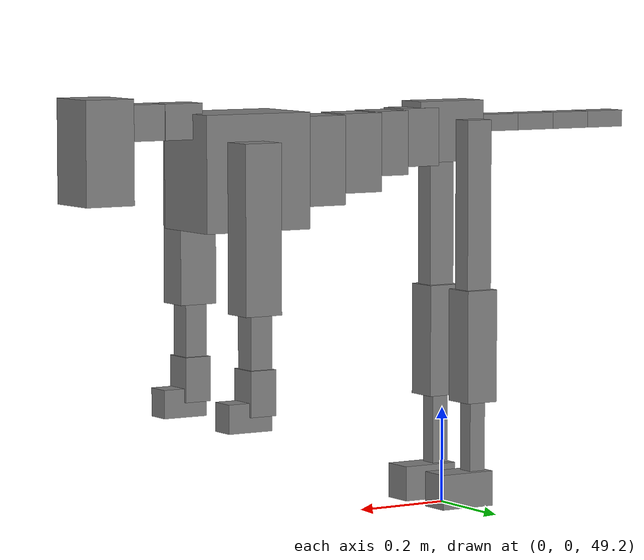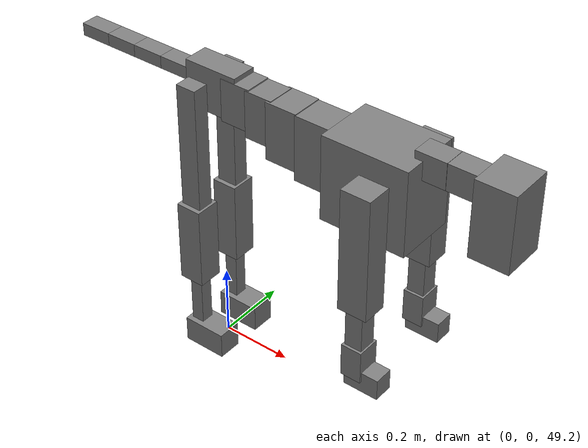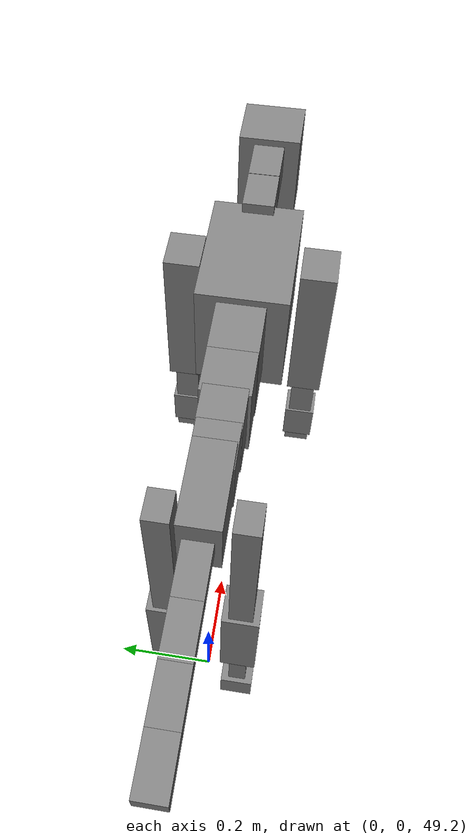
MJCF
<mujoco model="dog">

    <default>
        <joint armature="0.02" stiffness="1" damping="0.2" limited="true"/>
        <geom condim="3" friction="1 0.05 0.05" margin="0.01"/>
        <motor ctrllimited="true" ctrlrange="-1.0 1.0" forcelimited="true" gear="50"/>
    </default>

    <compiler inertiafromgeom="true" angle="radian"/>

    <option timestep="0.016" iterations="50" tolerance="1e-10" solver="Newton" jacobian="dense" cone="pyramidal"/>

    <size nconmax="20000" njmax="60000" nstack="5000000"/>
    <visual>
        <map force="0.1" zfar="30"/>
        <rgba haze="0.15 0.25 0.35 1"/>
        <quality shadowsize="2048"/>
        <global offwidth="800" offheight="800"/>
    </visual>

    <asset>
        <texture type="skybox" builtin="gradient" rgb1="0.3 0.5 0.7" rgb2="0 0 0" width="512" height="512"/>
        <texture name="texplane" type="2d" builtin="checker" rgb1=".2 .3 .4" rgb2=".1 0.15 0.2" width="512" height="512"
                 mark="cross" markrgb=".8 .8 .8"/>
        <texture name="texgeom" type="cube" builtin="flat" mark="cross" width="127" height="1278" rgb1="0.8 0.6 0.4"
                 rgb2="0.8 0.6 0.4" markrgb="1 1 1" random="0.01"/>

        <material name="matplane" reflectance="0.3" texture="texplane" texrepeat="1 1" texuniform="true"/>
        <material name="matgeom" texture="texgeom" texuniform="true" rgba="0.8 0.6 .4 1"/>
    </asset>

    <worldbody>
        <geom name="floor" pos="0 0 0" size="0 0 .25" type="plane" material="matplane" condim="3"/>

        <light directional="false" diffuse=".2 .2 .2" specular="0 0 0" pos="0 0 5" dir="0 0 -1" castshadow="false"/>
        <light mode="targetbodycom" target="torso" directional="false" diffuse=".8 .8 .8" specular="0.3 0.3 0.3"
               pos="0 0 4.0" dir="0 0 -1"/>

        <body name="root" pos="0 0 50">
            <freejoint name="root_1"/>
            <geom type="box" pos="0 0 -0.02" size="0.0774  0.0358  0.063" density="2030"/>

            <body name="spine1" pos="0.054 0 0">
                <joint name="spine1_y" axis="0 1 0" range="0 0.7" limited="true"/>
                <geom type="box" pos="0.02375 0 -0.03" size="0.04375  0.0375  0.05985" density="2030"/>

                <body name="spine2" pos="0.0612 0 0">
                    <joint name="spine2_y" axis="0 1 0" range="-0.15 0.15" limited="true"/>
                    <geom type="box" pos="0.03555  0  -0.04" size="0.04055  0.039  0.06615" density="2030"/>

                    <body name="spine3" pos="0.0730 0 0">
                        <joint name="spine3_y" axis="0 1 0" range="-0.15 0.15" limited="true"/>
                        <geom type="box" pos="0.03555  0  -0.057" size="0.04555  0.0445  0.081" density="2030"/>

                        <body name="spine4" pos="0.0780 0 0">
                            <joint name="spine4_y" axis="0 1 0" range="-0.15 0.15" limited="true"/>
                            <geom type="box" pos="0.05265  0  -0.07" size="0.05265  0.045  0.09135" density="2030"/>

                            <body name="torso" pos="0.1082 0 0">
                                <joint name="torso_y" axis="0 1 0" range="-0.15 0.15" limited="true"/>
                                <geom type="box" pos="0.11925  0  -0.085" size="0.11925  0.085  0.11745"
                                      density="2030"/>

                                <body name="neck1" pos="0.2160  0   0.0180">
                                    <joint name="neck1_y" axis="0 1 0" range="-1.2  -1" limited="true"/>
                                    <geom type="box" pos="0.0423  0  0" size="0.0423  0.03  0.036" density="2325"/>

                                    <body name="neck2" pos="0.0853  0  0">
                                        <joint name="neck2_y" axis="0 1 0" range="0.1  0" limited="true"/>
                                        <geom type="box" pos="0.0423  0  0" size="0.0423  0.03  0.036" density="2325"/>

                                        <body name="head" pos="0.0853  0  0">
                                            <joint name="head_y" axis="0 1 0" range="-0.3  -0.2" limited="true"/>
                                            <geom type="box" pos="0.0531  0  -0.055" size="0.0531  0.06  0.1044"
                                                  density="4030"/>

                                        </body>
                                    </body>
                                </body>

                                <body name="front_shoulder" pos="0.156  0   -0.0480">
                                    <joint name="front_shoulder_y" axis="0 1 0" range="-1 1.5" limited="true"/>
                                    <geom type="box" pos="0 0.13 -0.1438" size="0.0409  0.0349  0.1705" density="1158"/>
                                    <geom type="box" pos="0 -0.13 -0.1438" size="0.0409  0.0349  0.1705"
                                          density="1158"/>

                                    <body name="front_elbow" pos="0  0  -0.2877">
                                        <joint name="front_elbow_y" axis="0 1 0" range="-2 0" limited="true"/>
                                        <geom type="box" pos="0 0.13 -0.0736" size="0.0241  0.0247  0.0736"
                                              density="1081"/>
                                        <geom type="box" pos="0 -0.13 -0.0736" size="0.0241  0.0247  0.0736"
                                              density="1081"/>

                                        <body name="front_wrist" pos="0  0  -0.1472">
                                            <joint name="front_wrist_y" axis="0 1 0" range="-0.2 0" limited="true"/>
                                            <geom type="box" pos="0 0.13 -0.0330" size="0.0288  0.0320  0.0461"
                                                  density="1664"/>
                                            <geom type="box" pos="0 -0.13 -0.0330" size="0.0288  0.0320  0.0461"
                                                  density="1664"/>

                                            <body name="front_finger_end" pos="0  0  -0.0659">
                                                <joint name="front_finger_y" axis="0 1 0" range="-0.4 1"
                                                       limited="true"/>
                                                <geom type="box" pos="0.0267  0.13  -0.0143"
                                                      size="0.0490  0.0267  0.0293" density="1515"/>
                                                <geom type="box" pos="0.0267  -0.13  -0.0143"
                                                      size="0.0490  0.0267  0.0293" density="1515"/>

                                            </body>

                                        </body>
                                    </body>
                                </body>

                            </body>
                        </body>
                    </body>
                </body>
            </body>

            <body name="back_hip" pos="-0.03 0 -0.018">
                <joint name="back_hip_y" axis="0 1 0" range="-1.5 0.3" limited="true"/>
                <geom type="box" pos="0 0.07 -0.1723" size="0.0289  0.0226  0.1951" density="1154"/>
                <geom type="box" pos="0 -0.07 -0.1723" size="0.0289  0.0226  0.1951" density="1154"/>

                <body name="back_knee" pos="0  0  -0.3447">
                    <joint name="back_knee_y" axis="0 1 0" range="0 2.8" limited="true"/>
                    <geom type="box" pos="0 0.07 -0.1015" size="0.0359  0.0353  0.1170" density="1227"/>
                    <geom type="box" pos="0 -0.07 -0.1015" size="0.0359  0.0353  0.1170" density="1227"/>

                    <body name="back_ankle" pos="0  0  -0.2029">
                        <joint name="back_ankle_y" axis="0 1 0" range="-2.2 0" limited="true"/>
                        <geom type="box" pos="0 0.07 -0.0876" size="0.0182  0.0182  0.0989" density="1284"/>
                        <geom type="box" pos="0 -0.07 -0.0876" size="0.0182  0.0182  0.0989" density="1284"/>

                        <body name="back_toe_end" pos="0  0  -0.1752">
                            <joint name="back_toe_y" axis="0 1 0" range="-0.4 1" limited="true"/>
                            <geom type="box" pos="0.0336  0.07  -0.0215" size="0.0616  0.0336  0.0365" density="1515"/>
                            <geom type="box" pos="0.0336  -0.07  -0.0215" size="0.0616  0.0336  0.0365" density="1515"/>

                        </body>
                    </body>
                </body>
            </body>

            <body name="tail1" pos="-0.074 0 -0.006">
                <joint name="tail1_y" axis="0 1 0" range="-0.2 0.2" limited="true"/>
                <geom type="box" pos="-0.0536  0  0" size="0.045  0.025  0.0175" density="1587"/>

                <body name="tail2" pos="-0.09 0 0">
                    <joint name="tail2_y" axis="0 1 0" range="-0.2 0.2" limited="true"/>
                    <geom type="box" pos="-0.0536  0  0" size="0.045  0.025  0.0175" density="1587"/>

                    <body name="tail3" pos="-0.09 0 0">
                        <joint name="tail3_y" axis="0 1 0" range="-0.2 0.2" limited="true"/>
                        <geom type="box" pos="-0.0536  0  0" size="0.045  0.025  0.0175" density="1587"/>

                        <body name="tail4" pos="-0.09 0 0">
                            <joint name="tail4_y" axis="0 1 0" range="-0.2 0.2" limited="true"/>
                            <geom type="box" pos="-0.0536  0  0" size="0.045  0.025  0.0175" density="1587"/>

                        </body>
                    </body>
                </body>
            </body>
        </body>
    </worldbody>

    <actuator>
        <motor joint="spine1_y" forcerange="-150 150     "/>
        <motor joint="spine2_y" forcerange="-150 150     "/>
        <motor joint="spine3_y" forcerange="-150 150     "/>
        <motor joint="spine4_y" forcerange="-150 150     "/>
        <motor joint="torso_y" forcerange="-150 150     "/>
        <motor joint="neck1_y" forcerange="-100 100       "/>
        <motor joint="neck2_y" forcerange="-100 100       "/>
        <motor joint="head_y" forcerange="-150 150       "/>
        <motor joint="front_shoulder_y" forcerange="-155.10 177.74"/>
        <motor joint="front_elbow_y" forcerange="-162.66 116.83"/>
        <motor joint="front_wrist_y" forcerange="-112.51 143.31"/>
        <motor joint="front_finger_y" forcerange="-25.78 76.84"/>
        <motor joint="back_hip_y" forcerange="-278.08 223.82"/>
        <motor joint="back_knee_y" forcerange="-314.11 399.96"/>
        <motor joint="back_angle_y" forcerange="-72.36 118.63"/>
        <motor joint="back_toe_y" forcerange="-66.73 121.96"/>
        <motor joint="tail1_y" forcerange="-50 50     "/>
        <motor joint="tail2_y" forcerange="-50 50     "/>
        <motor joint="tail3_y" forcerange="-50 50     "/>
        <motor joint="tail4_y" forcerange="-50 50     "/>
    </actuator>
</mujoco>
